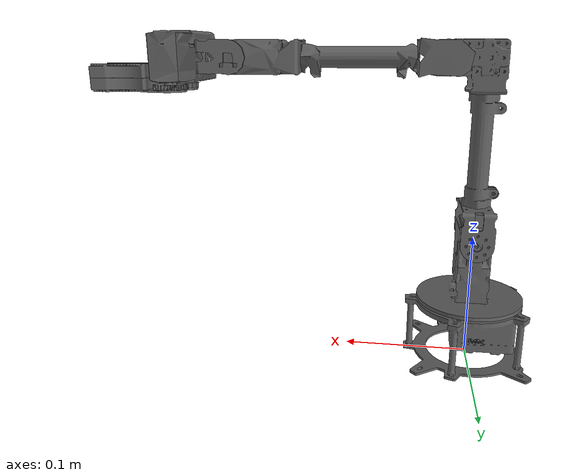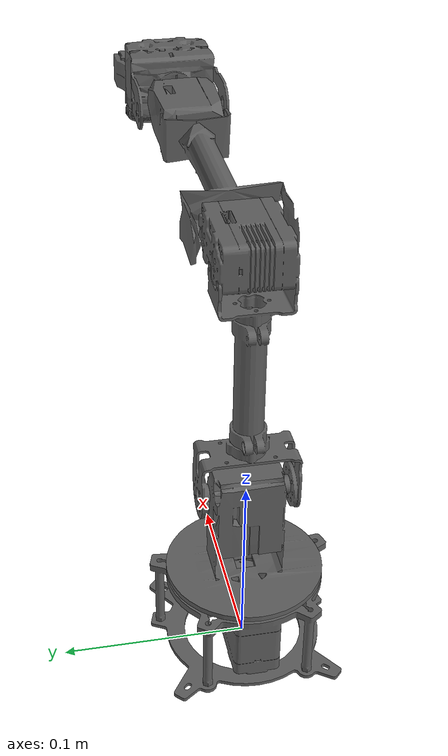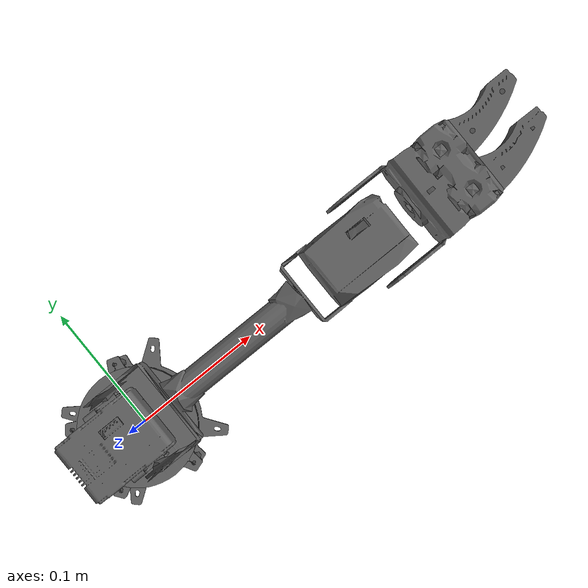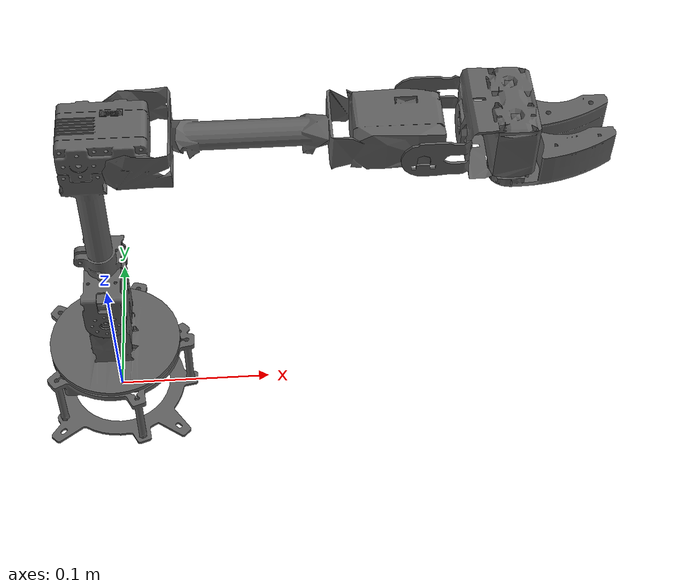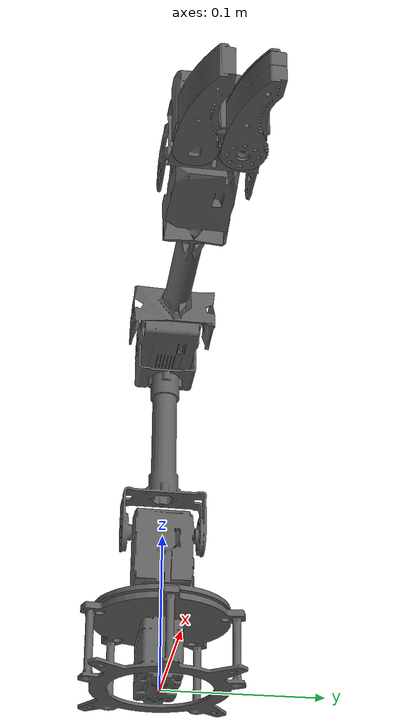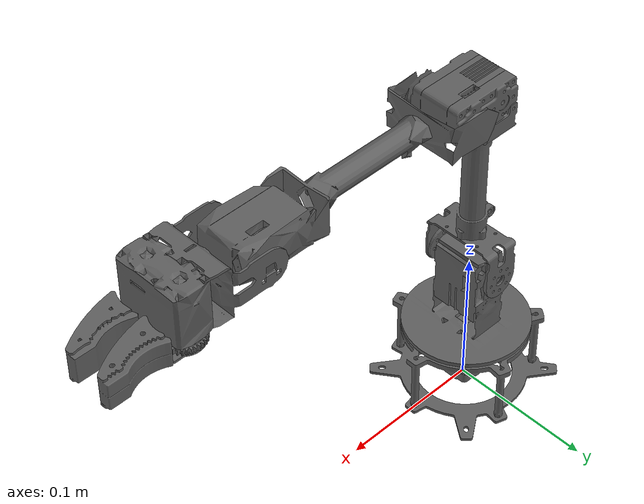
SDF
<sdf version='1.8'>
  <model name='lss_arm'>
    <joint name='lss_arm_joint_0' type='fixed'>
      <pose relative_to='__model__'>0 0 0 0 -0 0</pose>
      <parent>world</parent>
      <child>lss_arm_link_0</child>
    </joint>
    <link name='lss_arm_link_0'>
      <pose relative_to='lss_arm_joint_0'>0 0 0 0 -0 0</pose>
      <inertial>
        <pose>-0 0.00785 0.02559 0 -0 0</pose>
        <mass>0.071741081366601803</mass>
        <inertia>
          <ixx>3.0636904073992999e-05</ixx>
          <ixy>9.1991087569794703e-11</ixy>
          <ixz>-6.9954291649509698e-14</ixz>
          <iyy>2.3738105430784199e-05</iyy>
          <iyz>2.1441763155438801e-07</iyz>
          <izz>4.3732554014946597e-05</izz>
        </inertia>
      </inertial>
      <collision name='lss_arm_link_0_collision'>
        <pose>0 0 0 0 -0 0</pose>
        <geometry>
          <mesh>
            <scale>1 1 1</scale>
            <uri>meshes/collision/link_0.STL</uri>
          </mesh>
        </geometry>
        <surface>
          <contact>
            <ode/>
          </contact>
          <friction>
            <ode>
              <mu>0.29999999999999999</mu>
              <mu2>0.29999999999999999</mu2>
            </ode>
          </friction>
        </surface>
      </collision>
      <visual name='lss_arm_link_0_visual'>
        <pose>0 0 0 0 -0 0</pose>
        <geometry>
          <mesh>
            <scale>1 1 1</scale>
            <uri>meshes/visual/link_0.STL</uri>
          </mesh>
        </geometry>
        <material>
          <diffuse>0.375 0.375 0.375 1</diffuse>
          <ambient>0.375 0.375 0.375 1</ambient>
        </material>
      </visual>
    </link>
    <joint name='lss_arm_joint_1' type='revolute'>
      <pose relative_to='lss_arm_link_0'>0 0 0.0427 1.5708 -0 0</pose>
      <parent>lss_arm_link_0</parent>
      <child>lss_arm_link_1</child>
      <axis>
        <xyz>0 1 0</xyz>
        <limit>
          <lower>-3.1415926535897931</lower>
          <upper>3.1415926535897931</upper>
          <effort>6.8439284999999996</effort>
          <velocity>6.2830000000000004</velocity>
        </limit>
        <dynamics>
          <damping>0.01</damping>
          <friction>3.48</friction>
          <spring_reference>0</spring_reference>
          <spring_stiffness>0</spring_stiffness>
        </dynamics>
      </axis>
      <physics>
        <ode>
          <limit>
            <cfm>0</cfm>
            <erp>0.20000000000000001</erp>
          </limit>
        </ode>
      </physics>
    </joint>
    <link name='lss_arm_link_1'>
      <pose relative_to='lss_arm_joint_1'>0 0 0 0 -0 0</pose>
      <inertial>
        <pose>0 0.034805 0.00015 0 -0 0</pose>
        <mass>0.062887576347183394</mass>
        <inertia>
          <ixx>2.20425725995968e-05</ixx>
          <ixy>9.1993511245884802e-11</ixy>
          <ixz>1.70368679861891e-13</ixz>
          <iyy>2.2948590897456299e-05</iyy>
          <iyz>-2.19524118186986e-07</iyz>
          <izz>1.89578527653699e-05</izz>
        </inertia>
      </inertial>
      <collision name='lss_arm_link_1_collision'>
        <pose>0 0 0 0 -0 0</pose>
        <geometry>
          <mesh>
            <scale>1 1 1</scale>
            <uri>meshes/collision/link_1.STL</uri>
          </mesh>
        </geometry>
        <surface>
          <contact>
            <ode/>
          </contact>
          <friction>
            <ode>
              <mu>0.29999999999999999</mu>
              <mu2>0.29999999999999999</mu2>
            </ode>
          </friction>
        </surface>
      </collision>
      <visual name='lss_arm_link_1_visual'>
        <pose>0 0 0 0 -0 0</pose>
        <geometry>
          <mesh>
            <scale>1 1 1</scale>
            <uri>meshes/visual/link_1.STL</uri>
          </mesh>
        </geometry>
        <material>
          <diffuse>0.375 0.375 0.375 1</diffuse>
          <ambient>0.375 0.375 0.375 1</ambient>
        </material>
      </visual>
    </link>
    <joint name='lss_arm_joint_2' type='revolute'>
      <pose relative_to='lss_arm_link_1'>0 0.0588 0 0 0 -1.36211</pose>
      <parent>lss_arm_link_1</parent>
      <child>lss_arm_link_2</child>
      <axis>
        <xyz>0 0 1</xyz>
        <limit>
          <lower>-2.1816615649929121</lower>
          <upper>2.1816615649929121</upper>
          <effort>6.8439284999999996</effort>
          <velocity>6.2830000000000004</velocity>
        </limit>
        <dynamics>
          <damping>0.01</damping>
          <friction>3.48</friction>
          <spring_reference>0</spring_reference>
          <spring_stiffness>0</spring_stiffness>
        </dynamics>
      </axis>
      <physics>
        <ode>
          <limit>
            <cfm>0</cfm>
            <erp>0.20000000000000001</erp>
          </limit>
        </ode>
      </physics>
    </joint>
    <link name='lss_arm_link_2'>
      <pose relative_to='lss_arm_joint_2'>0 0 0 0 -0 0</pose>
      <inertial>
        <pose>-0.112045 0.033642 0.000234 0 -0 0</pose>
        <mass>0.059220729789014201</mass>
        <inertia>
          <ixx>1.6633399872544299e-05</ixx>
          <ixy>-1.03352394963547e-06</ixy>
          <ixz>-4.4327410811638599e-08</ixz>
          <iyy>1.1971383214162999e-05</iyy>
          <iyz>-2.15005479062966e-07</iyz>
          <izz>1.41577057658295e-05</izz>
        </inertia>
      </inertial>
      <collision name='lss_arm_link_2_collision'>
        <pose>0 0 0 0 -0 0</pose>
        <geometry>
          <mesh>
            <scale>1 1 1</scale>
            <uri>meshes/collision/link_2.STL</uri>
          </mesh>
        </geometry>
        <surface>
          <contact>
            <ode/>
          </contact>
          <friction>
            <ode>
              <mu>0.29999999999999999</mu>
              <mu2>0.29999999999999999</mu2>
            </ode>
          </friction>
        </surface>
      </collision>
      <visual name='lss_arm_link_2_visual'>
        <pose>0 0 0 0 -0 0</pose>
        <geometry>
          <mesh>
            <scale>1 1 1</scale>
            <uri>meshes/visual/link_2.STL</uri>
          </mesh>
        </geometry>
        <material>
          <diffuse>0.375 0.375 0.375 1</diffuse>
          <ambient>0.375 0.375 0.375 1</ambient>
        </material>
      </visual>
    </link>
    <joint name='lss_arm_joint_3' type='revolute'>
      <pose relative_to='lss_arm_link_2'>-0.129548 0.053398 0 0 -0 1.02985</pose>
      <parent>lss_arm_link_2</parent>
      <child>lss_arm_link_3</child>
      <axis>
        <xyz>0 0 1</xyz>
        <limit>
          <lower>-1.919862177193763</lower>
          <upper>1.570796326794897</upper>
          <effort>6.8439284999999996</effort>
          <velocity>6.2830000000000004</velocity>
        </limit>
        <dynamics>
          <damping>0.01</damping>
          <friction>3.48</friction>
          <spring_reference>0</spring_reference>
          <spring_stiffness>0</spring_stiffness>
        </dynamics>
      </axis>
      <physics>
        <ode>
          <limit>
            <cfm>0</cfm>
            <erp>0.20000000000000001</erp>
          </limit>
        </ode>
      </physics>
    </joint>
    <link name='lss_arm_link_3'>
      <pose relative_to='lss_arm_joint_3'>0 0 0 0 -0 0</pose>
      <inertial>
        <pose>0.119623 0.041151 0.000345 0 -0 0</pose>
        <mass>0.060149035312470803</mass>
        <inertia>
          <ixx>1.1113660383281e-05</ixx>
          <ixy>-2.6746693260721798e-06</ixy>
          <ixz>2.0160569864272201e-07</ixz>
          <iyy>1.7941964943423101e-05</iyy>
          <iyz>-6.9564477599757001e-08</iyz>
          <izz>1.4580709936660301e-05</izz>
        </inertia>
      </inertial>
      <collision name='lss_arm_link_3_collision'>
        <pose>0 0 0 0 -0 0</pose>
        <geometry>
          <mesh>
            <scale>1 1 1</scale>
            <uri>meshes/collision/link_3.STL</uri>
          </mesh>
        </geometry>
        <surface>
          <contact>
            <ode/>
          </contact>
          <friction>
            <ode>
              <mu>0.29999999999999999</mu>
              <mu2>0.29999999999999999</mu2>
            </ode>
          </friction>
        </surface>
      </collision>
      <visual name='lss_arm_link_3_visual'>
        <pose>0 0 0 0 -0 0</pose>
        <geometry>
          <mesh>
            <scale>1 1 1</scale>
            <uri>meshes/visual/link_3.STL</uri>
          </mesh>
        </geometry>
        <material>
          <diffuse>0.375 0.375 0.375 1</diffuse>
          <ambient>0.375 0.375 0.375 1</ambient>
        </material>
      </visual>
    </link>
    <joint name='lss_arm_joint_4' type='revolute'>
      <pose relative_to='lss_arm_link_3'>0.154274 0.053233 0 0 -0 0.33226</pose>
      <parent>lss_arm_link_3</parent>
      <child>lss_arm_link_4</child>
      <axis>
        <xyz>0 0 1</xyz>
        <limit>
          <lower>-1.919862177193763</lower>
          <upper>1.919862177193763</upper>
          <effort>6.8439284999999996</effort>
          <velocity>6.2830000000000004</velocity>
        </limit>
        <dynamics>
          <damping>0.01</damping>
          <friction>3.48</friction>
          <spring_reference>0</spring_reference>
          <spring_stiffness>0</spring_stiffness>
        </dynamics>
      </axis>
      <physics>
        <ode>
          <limit>
            <cfm>0</cfm>
            <erp>0.20000000000000001</erp>
          </limit>
        </ode>
      </physics>
    </joint>
    <link name='lss_arm_link_4'>
      <pose relative_to='lss_arm_joint_4'>0 0 0 0 -0 0</pose>
      <inertial>
        <pose>0.044689 -0.000131 0.000356 0 -0 0</pose>
        <mass>0.0556319659037934</mass>
        <inertia>
          <ixx>1.8133774910878799e-05</ixx>
          <ixy>-6.9951384690848697e-14</ixy>
          <ixz>9.1994103666448402e-11</ixz>
          <iyy>1.49173144124065e-05</iyy>
          <iyz>2.14447838213905e-07</iyz>
          <izz>9.1279672834269492e-06</izz>
        </inertia>
      </inertial>
      <collision name='lss_arm_link_4_collision'>
        <pose>0 0 0 0 -0 0</pose>
        <geometry>
          <mesh>
            <scale>1 1 1</scale>
            <uri>meshes/collision/link_4.STL</uri>
          </mesh>
        </geometry>
        <surface>
          <contact>
            <ode/>
          </contact>
          <friction>
            <ode>
              <mu>0.29999999999999999</mu>
              <mu2>0.29999999999999999</mu2>
            </ode>
          </friction>
        </surface>
      </collision>
      <visual name='lss_arm_link_4_visual'>
        <pose>0 0 0 0 -0 0</pose>
        <geometry>
          <mesh>
            <scale>1 1 1</scale>
            <uri>meshes/visual/link_4.STL</uri>
          </mesh>
        </geometry>
        <material>
          <diffuse>0.375 0.375 0.375 1</diffuse>
          <ambient>0.375 0.375 0.375 1</ambient>
        </material>
      </visual>
    </link>
    <joint name='lss_arm_joint_5' type='revolute'>
      <pose relative_to='lss_arm_link_4'>0.0508 -0.002739 -0.0124 0 -0 0</pose>
      <parent>lss_arm_link_4</parent>
      <child>lss_arm_finger_r</child>
      <axis>
        <xyz>0 1 0</xyz>
        <limit>
          <lower>0</lower>
          <upper>1.570796326794897</upper>
          <effort>1.45</effort>
          <velocity>6.2830000000000004</velocity>
        </limit>
        <dynamics>
          <damping>0.01</damping>
          <friction>0.40000000000000002</friction>
          <spring_reference>0</spring_reference>
          <spring_stiffness>0</spring_stiffness>
        </dynamics>
      </axis>
      <physics>
        <ode>
          <limit>
            <cfm>0</cfm>
            <erp>0.20000000000000001</erp>
          </limit>
        </ode>
      </physics>
    </joint>
    <link name='lss_arm_finger_r'>
      <pose relative_to='lss_arm_joint_5'>0 0 0 0 -0 0</pose>
      <inertial>
        <pose>0.031071 -0.014045 0.00134 0 -0 0</pose>
        <mass>0.0152813047822834</mass>
        <inertia>
          <ixx>6.12119941271843e-07</ixx>
          <ixy>-1.6104488931588599e-12</ixy>
          <ixz>-4.4162176335349601e-07</ixz>
          <iyy>2.99804070646807e-06</iyy>
          <iyz>-3.8879675590964998e-12</iyz>
          <izz>2.54603357212087e-06</izz>
        </inertia>
      </inertial>
      <collision name='lss_arm_finger_r_collision'>
        <pose>0 0 0 0 -0 0</pose>
        <geometry>
          <mesh>
            <scale>1 1 1</scale>
            <uri>meshes/collision/finger_r.STL</uri>
          </mesh>
        </geometry>
        <surface>
          <contact>
            <ode/>
          </contact>
          <friction>
            <ode>
              <mu>0.29999999999999999</mu>
              <mu2>0.29999999999999999</mu2>
            </ode>
          </friction>
        </surface>
      </collision>
      <visual name='lss_arm_finger_r_visual'>
        <pose>0 0 0 0 -0 0</pose>
        <geometry>
          <mesh>
            <scale>1 1 1</scale>
            <uri>meshes/visual/finger_r.STL</uri>
          </mesh>
        </geometry>
        <material>
          <diffuse>0.375 0.375 0.375 1</diffuse>
          <ambient>0.375 0.375 0.375 1</ambient>
        </material>
      </visual>
    </link>
    <joint name='lss_arm_joint_6' type='revolute'>
      <pose relative_to='lss_arm_link_4'>0.0508 -0.002739 0.013 0 -0 0</pose>
      <parent>lss_arm_link_4</parent>
      <child>lss_arm_finger_l</child>
      <axis>
        <xyz>0 1 0</xyz>
        <limit>
          <lower>-1.570796326794897</lower>
          <upper>0</upper>
          <effort>1.45</effort>
          <velocity>6.2830000000000004</velocity>
        </limit>
        <dynamics>
          <damping>0.01</damping>
          <friction>0.40000000000000002</friction>
          <spring_reference>0</spring_reference>
          <spring_stiffness>0</spring_stiffness>
        </dynamics>
      </axis>
      <physics>
        <ode>
          <limit>
            <cfm>0</cfm>
            <erp>0.20000000000000001</erp>
          </limit>
        </ode>
      </physics>
    </joint>
    <link name='lss_arm_finger_l'>
      <pose relative_to='lss_arm_joint_6'>0 0 0 0 -0 0</pose>
      <inertial>
        <pose>0.030773 -0.014098 -0.001327 0 -0 0</pose>
        <mass>0.0154295568992377</mass>
        <inertia>
          <ixx>6.1324288588371195e-07</ixx>
          <ixy>-1.69555790218149e-12</ixy>
          <ixz>4.4162176460178102e-07</ixz>
          <iyy>2.99899721506146e-06</iyy>
          <iyz>4.0934388850918597e-12</iyz>
          <izz>2.5471565367428799e-06</izz>
        </inertia>
      </inertial>
      <collision name='lss_arm_finger_l_collision'>
        <pose>0 0 0 0 -0 0</pose>
        <geometry>
          <mesh>
            <scale>1 1 1</scale>
            <uri>meshes/collision/finger_l.STL</uri>
          </mesh>
        </geometry>
        <surface>
          <contact>
            <ode/>
          </contact>
          <friction>
            <ode>
              <mu>0.29999999999999999</mu>
              <mu2>0.29999999999999999</mu2>
            </ode>
          </friction>
        </surface>
      </collision>
      <visual name='lss_arm_finger_l_visual'>
        <pose>0 0 0 0 -0 0</pose>
        <geometry>
          <mesh>
            <scale>1 1 1</scale>
            <uri>meshes/visual/finger_l.STL</uri>
          </mesh>
        </geometry>
        <material>
          <diffuse>0.375 0.375 0.375 1</diffuse>
          <ambient>0.375 0.375 0.375 1</ambient>
        </material>
      </visual>
    </link>
    <static>0</static>
    <plugin name='ign_ros2_control::IgnitionROS2ControlPlugin' filename='libign_ros2_control-system.so'>
      <parameters>/home/geraldinebc/Documents/TB4_LSS_PROJECT/lss_arm/install/lss_arm_moveit/share/lss_arm_moveit/config/controllers_position.yaml</parameters>
    </plugin>
  </model>
</sdf>
